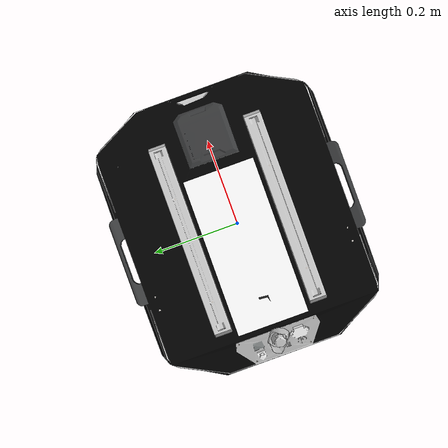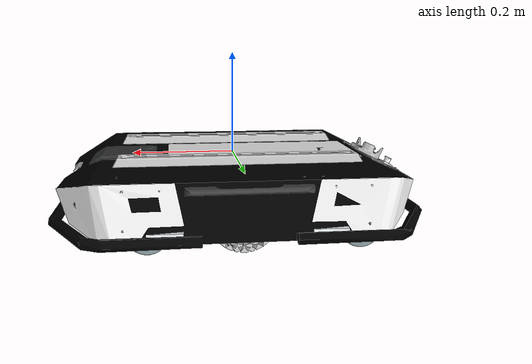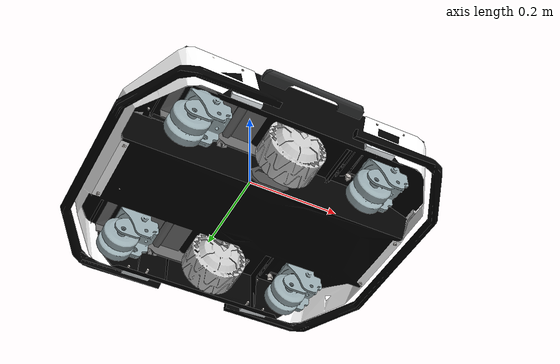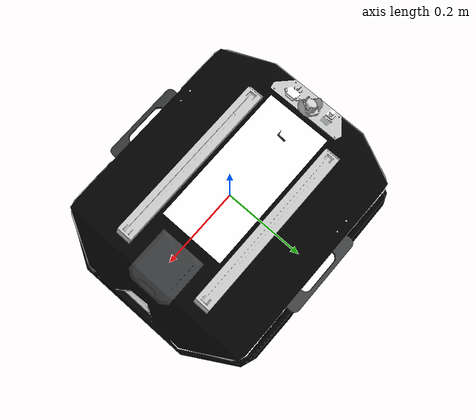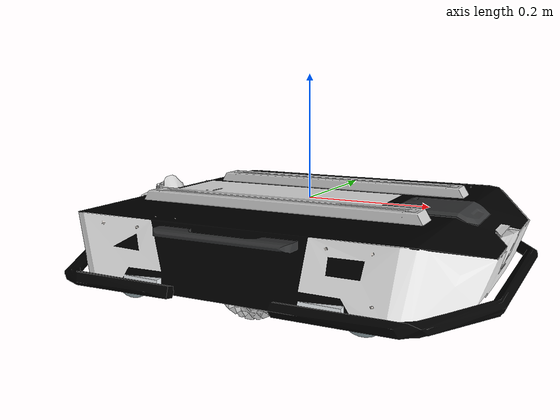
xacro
<?xml version="1.0" ?>
<!-- |    This document was autogenerated by xacro from /home/baqer/tracer_ur5_ws/src/tracer_ros/tracer_description/urdf/tracer_v1.xacro | -->
<!-- |    EDITING THIS FILE BY HAND IS NOT RECOMMENDED                                 | -->
<robot name="tracer_v1">
    <!-- Base link -->
    <link name="base_link">
        <visual>
            <origin rpy="1.57 0 0" xyz="0 0 0" />
            <geometry>
                <mesh filename="package://tracer_description/meshes/tracer_base_link_no_wheel.dae" />
            </geometry>
        </visual>
        <collision>
            <!--origin
            xyz="-0.0145261552504705 0.0231316650320557 0.00586280190939592"
            rpy="0 0 0" /-->
            <origin rpy="1.57 0 0" xyz="0 0 0" />
            <geometry>
                <mesh filename="package://tracer_description/meshes/tracer_base_link_no_wheel.dae" />
            </geometry>
        </collision>
        <inertial>
            <mass value="0.1" />
            <origin xyz="0 0 0" rpy="0 0 0" />
            <inertia ixx="0.03" iyy="0.03" izz="0.03" ixy="0.0" ixz="0.0" iyz="0.0" />
        </inertial>
    </link>
    <link name="inertial_link">
        <inertial>
            <!--mass value="44.3898489950015" /-->
            <mass value="132.3898489950015" />
            <origin xyz="0.015 0.0231316650320557 0" />
            <inertia ixx="0.185196122711036" ixy="4.30144213829512E-08" ixz="5.81037523686401E-08" iyy="0.364893736238929" iyz="-0.000386720198091934" izz="0.223868521722778" />
        </inertial>
    </link>
    <joint name="inertial_joint" type="fixed">
        <origin rpy="0 0 0" xyz="0 0 0" />
        <parent link="base_link" />
        <child link="inertial_link" />
    </joint>
    <!-- For testing, hang the robot up in the air -->
    <link name="right_wheel_link">
        <inertial>
            <mass value="6" />
            <origin xyz="0 0 0" rpy="0 0 0" />
            <inertia ixx="0.7171" ixy="0" ixz="0" iyy="0.1361" iyz="0" izz="0.7171" />
        </inertial>
        <visual>
            <origin rpy="0 0 0" xyz="0 0 0" />
            <geometry>
                <mesh filename="package://tracer_description/meshes/tracer_wheel.dae" />
            </geometry>
        </visual>
        <collision>
            <origin rpy="0 0 0" xyz="0 0 0" />
            <geometry>
                <mesh filename="package://tracer_description/meshes/tracer_wheel.dae" />
            </geometry>
        </collision>
    </link>
    <joint name="right_wheel" type="continuous">
        <parent link="base_link" />
        <child link="right_wheel_link" />
        <origin rpy="0 0 0" xyz="0 -0.17 -0.082" />
        <axis rpy="0 0 0" xyz="0 1 0" />
    </joint>
    <link name="left_wheel_link">
        <inertial>
            <mass value="6" />
            <origin xyz="0 0 0" rpy="0 0 0" />
            <inertia ixx="0.7171" ixy="0" ixz="0" iyy="0.1361" iyz="0" izz="0.7171" />
        </inertial>
        <visual>
            <origin rpy="0 0 0" xyz="0 0 0" />
            <geometry>
                <mesh filename="package://tracer_description/meshes/tracer_wheel.dae" />
            </geometry>
        </visual>
        <collision>
            <origin rpy="0 0 0" xyz="0 0 0" />
            <geometry>
                <mesh filename="package://tracer_description/meshes/tracer_wheel.dae" />
            </geometry>
        </collision>
    </link>
    <joint name="left_wheel" type="continuous">
        <parent link="base_link" />
        <child link="left_wheel_link" />
        <origin rpy="3.14 0 0" xyz="0 0.17 -0.082" />
        <axis rpy="0 0 0" xyz="0 1 0" />
    </joint>
    <!--tracer castor wheel-->
    <link name="fl_castor_link">
        <inertial>
            <mass value="1" />
            <origin xyz="0 0 0" />
            <inertia ixx="0.7171" ixy="0" ixz="0" iyy="0.1361" iyz="0" izz="0.7171" />
        </inertial>
        <visual>
            <geometry>
                <mesh filename="package://tracer_description/meshes/castor_joint.dae" />
            </geometry>
        </visual>
    </link>
    <joint name="fl_castor_wheel" type="continuous">
        <origin rpy="-1.57 0 0" xyz="0.18955 0.17 -0.0380886" />
        <parent link="base_link" />
        <child link="fl_castor_link" />
        <axis rpy="0 0 0" xyz="0 1 0" />
    </joint>
    <link name="fr_castor_link">
        <inertial>
            <mass value="1" />
            <origin xyz="0 0 0" />
            <inertia ixx="0.7171" ixy="0" ixz="0" iyy="0.1361" iyz="0" izz="0.7171" />
        </inertial>
        <visual>
            <geometry>
                <mesh filename="package://tracer_description/meshes/castor_joint.dae" />
            </geometry>
        </visual>
    </link>
    <joint name="fr_castor_wheel" type="continuous">
        <origin rpy="-1.57 0 0" xyz="0.18955 -0.17 -0.0380886" />
        <parent link="base_link" />
        <child link="fr_castor_link" />
        <axis rpy="0 0 0" xyz="0 1 0" />
    </joint>
    <link name="rr_castor_link">
        <inertial>
            <mass value="1" />
            <origin xyz="0 0 0" />
            <inertia ixx="0.7171" ixy="0" ixz="0" iyy="0.1361" iyz="0" izz="0.7171" />
        </inertial>
        <visual>
            <geometry>
                <mesh filename="package://tracer_description/meshes/castor_joint.dae" />
            </geometry>
        </visual>
    </link>
    <joint name="rr_castor_wheel" type="continuous">
        <origin rpy="-1.57 0 0" xyz="-0.18955 -0.17 -0.0380886" />
        <parent link="base_link" />
        <child link="rr_castor_link" />
        <axis rpy="0 0 0" xyz="0 1 0" />
    </joint>
    <link name="rl_castor_link">
        <inertial>
            <mass value="1" />
            <origin xyz="0 0 0" />
            <inertia ixx="0.7171" ixy="0" ixz="0" iyy="0.1361" iyz="0" izz="0.7171" />
        </inertial>
        <visual>
            <geometry>
                <mesh filename="package://tracer_description/meshes/castor_joint.dae" />
            </geometry>
        </visual>
    </link>
    <joint name="rl_castor_wheel" type="continuous">
        <origin rpy="-1.57 0 0" xyz="-0.18955 0.17 -0.0380886" />
        <parent link="base_link" />
        <child link="rl_castor_link" />
        <axis rpy="0 0 0" xyz="0 1 0" />
    </joint>
    <link name="fl_wheel_link">
        <inertial>
            <mass value="1" />
            <origin xyz="0 0 0" rpy="0 0 0" />
            <inertia ixx="0.3131" ixy="0" ixz="0" iyy="0.3131" iyz="0" izz="0.1361" />
        </inertial>
        <visual>
            <geometry>
                <mesh filename="package://tracer_description/meshes/castor.dae" />
            </geometry>
        </visual>
        <collision>
            <origin rpy="0 0 0" xyz="0 0 0" />
            <geometry>
                --&gt;
                <mesh filename="package://tracer_description/meshes/castor.dae" />
            </geometry>
        </collision>
    </link>
    <joint name="fl_wheel" type="continuous">
        <parent link="fl_castor_link" />
        <child link="fl_wheel_link" />
        <dynamics damping="0.0" friction="0.0" />
        <origin rpy="0 0 0" xyz="-0.0218084 0.067 0" />
        <axis rpy="0 0 0" xyz="0 0 1" />
    </joint>
    <link name="fr_wheel_link">
        <inertial>
            <mass value="1" />
            <origin xyz="0 0 0" rpy="0 0 0" />
            <inertia ixx="0.3131" ixy="0" ixz="0" iyy="0.3131" iyz="0" izz="0.1361" />
        </inertial>
        <visual>
            <geometry>
                <mesh filename="package://tracer_description/meshes/castor.dae" />
            </geometry>
        </visual>
        <collision>
            <origin rpy="0 0 0" xyz="0 0 0" />
            <geometry>
                --&gt;
                <mesh filename="package://tracer_description/meshes/castor.dae" />
            </geometry>
        </collision>
    </link>
    <joint name="fr_wheel" type="continuous">
        <parent link="fr_castor_link" />
        <child link="fr_wheel_link" />
        <dynamics damping="0.0" friction="0.0" />
        <origin rpy="0 0 0" xyz="-0.0218084 0.067 0" />
        <axis rpy="0 0 0" xyz="0 0 1" />
    </joint>
    <link name="rr_wheel_link">
        <inertial>
            <mass value="1" />
            <origin xyz="0 0 0" rpy="0 0 0" />
            <inertia ixx="0.3131" ixy="0" ixz="0" iyy="0.3131" iyz="0" izz="0.1361" />
        </inertial>
        <visual>
            <geometry>
                <mesh filename="package://tracer_description/meshes/castor.dae" />
            </geometry>
        </visual>
        <collision>
            <origin rpy="0 0 0" xyz="0 0 0" />
            <geometry>
                <mesh filename="package://tracer_description/meshes/castor.dae" />
            </geometry>
        </collision>
    </link>
    <joint name="rr_wheel" type="continuous">
        <parent link="rr_castor_link" />
        <child link="rr_wheel_link" />
        <dynamics damping="0.0" friction="0.0" />
        <origin rpy="0 0 0" xyz="-0.0218084 0.067 0" />
        <axis rpy="0 0 0" xyz="0 0 1" />
    </joint>
    <link name="rl_wheel_link">
        <inertial>
            <mass value="1" />
            <origin xyz="0 0 0" rpy="0 0 0" />
            <inertia ixx="0.3131" ixy="0" ixz="0" iyy="0.3131" iyz="0" izz="0.1361" />
        </inertial>
        <visual>
            <geometry>
                <mesh filename="package://tracer_description/meshes/castor.dae" />
            </geometry>
        </visual>
        <collision>
            <origin rpy="0 0 0" xyz="0 0 0" />
            <geometry>
                <mesh filename="package://tracer_description/meshes/castor.dae" />
            </geometry>
        </collision>
    </link>
    <joint name="rl_wheel" type="continuous">
        <parent link="rl_castor_link" />
        <child link="rl_wheel_link" />
        <dynamics damping="0.0" friction="0.0" />
        <origin rpy="0 0 0" xyz="-0.0218084 0.067 0" />
        <axis rpy="0 0 0" xyz="0 0 1" />
    </joint>
    <!-- Additional definitions for simulation -->
    <transmission name="right_wheel_trans" type="SimpleTransmission">
        <type>transmission_interface/SimpleTransmission</type>
        <actuator name="right_wheel_motor">
            <mechanicalReduction>1</mechanicalReduction>
            <hardwareInterface>hardware_interface/EffortJointInterface</hardwareInterface>
        </actuator>
        <joint name="right_wheel">
            <hardwareInterface>hardware_interface/VelocityJointInterface</hardwareInterface>
        </joint>
    </transmission>
    <transmission name="left_wheel_trans" type="SimpleTransmission">
        <type>transmission_interface/SimpleTransmission</type>
        <actuator name="left_wheel_motor">
            <mechanicalReduction>1</mechanicalReduction>
            <hardwareInterface>hardware_interface/EffortJointInterface</hardwareInterface>
        </actuator>
        <joint name="left_wheel">
            <hardwareInterface>hardware_interface/VelocityJointInterface</hardwareInterface>
        </joint>
    </transmission>
    <transmission name="fl_wheel_trans" type="SimpleTransmission">
        <type>transmission_interface/SimpleTransmission</type>
        <actuator name="fl_wheel_motor">
            <mechanicalReduction>1</mechanicalReduction>
            <hardwareInterface>hardware_interface/EffortJointInterface</hardwareInterface>
        </actuator>
        <joint name="fl_wheel">
            <hardwareInterface>hardware_interface/VelocityJointInterface</hardwareInterface>
        </joint>
    </transmission>
    <transmission name="fr_wheel_trans" type="SimpleTransmission">
        <type>transmission_interface/SimpleTransmission</type>
        <actuator name="fr_wheel_motor">
            <mechanicalReduction>1</mechanicalReduction>
            <hardwareInterface>hardware_interface/EffortJointInterface</hardwareInterface>
        </actuator>
        <joint name="fr_wheel">
            <hardwareInterface>hardware_interface/VelocityJointInterface</hardwareInterface>
        </joint>
    </transmission>
    <transmission name="rr_wheel_trans" type="SimpleTransmission">
        <type>transmission_interface/SimpleTransmission</type>
        <actuator name="rr_wheel_motor">
            <mechanicalReduction>1</mechanicalReduction>
            <hardwareInterface>hardware_interface/EffortJointInterface</hardwareInterface>
        </actuator>
        <joint name="rr_wheel">
            <hardwareInterface>hardware_interface/VelocityJointInterface</hardwareInterface>
        </joint>
    </transmission>
    <transmission name="rl_wheel_trans" type="SimpleTransmission">
        <type>transmission_interface/SimpleTransmission</type>
        <actuator name="rl_wheel_motor">
            <mechanicalReduction>1</mechanicalReduction>
            <hardwareInterface>hardware_interface/EffortJointInterface</hardwareInterface>
        </actuator>
        <joint name="rl_wheel">
            <hardwareInterface>hardware_interface/VelocityJointInterface</hardwareInterface>
        </joint>
    </transmission>
    <transmission name="fl_castor_wheel_trans" type="SimpleTransmission">
        <type>transmission_interface/SimpleTransmission</type>
        <actuator name="fl_castor_wheel_motor">
            <mechanicalReduction>1</mechanicalReduction>
            <hardwareInterface>hardware_interface/EffortJointInterface</hardwareInterface>
        </actuator>
        <joint name="fl_castor_wheel">
            <hardwareInterface>hardware_interface/VelocityJointInterface</hardwareInterface>
        </joint>
    </transmission>
    <transmission name="fr_castor_wheel_trans" type="SimpleTransmission">
        <type>transmission_interface/SimpleTransmission</type>
        <actuator name="fr_castor_wheel_motor">
            <mechanicalReduction>1</mechanicalReduction>
            <hardwareInterface>hardware_interface/EffortJointInterface</hardwareInterface>
        </actuator>
        <joint name="fr_castor_wheel">
            <hardwareInterface>hardware_interface/VelocityJointInterface</hardwareInterface>
        </joint>
    </transmission>
    <transmission name="rr_castor_wheel_trans" type="SimpleTransmission">
        <type>transmission_interface/SimpleTransmission</type>
        <actuator name="rr_castor_wheel_motor">
            <mechanicalReduction>1</mechanicalReduction>
            <hardwareInterface>hardware_interface/EffortJointInterface</hardwareInterface>
        </actuator>
        <joint name="rr_castor_wheel">
            <hardwareInterface>hardware_interface/VelocityJointInterface</hardwareInterface>
        </joint>
    </transmission>
    <transmission name="rl_castor_wheel_trans" type="SimpleTransmission">
        <type>transmission_interface/SimpleTransmission</type>
        <actuator name="rl_castor_wheel_motor">
            <mechanicalReduction>1</mechanicalReduction>
            <hardwareInterface>hardware_interface/EffortJointInterface</hardwareInterface>
        </actuator>
        <joint name="rl_castor_wheel">
            <hardwareInterface>hardware_interface/VelocityJointInterface</hardwareInterface>
        </joint>
    </transmission>
    <!-- Controller configurations -->
    <gazebo>
        <plugin filename="libgazebo_ros_control.so" name="gazebo_ros_control">
            <robotNamespace>/</robotNamespace>
        </plugin>
    </gazebo>
    <!-- kp spring constant, kd damping constant -->
    <gazebo>
        <mu1 value="1.0" />
        <mu2 value="0.9" />
        <kp value="10000000.0" />
        <kd value="1.0" />
        <fdir1 value="1 0 0" />
        <minDepth value="0.001" />
        <maxContacts value="64" />
    </gazebo>
</robot>
